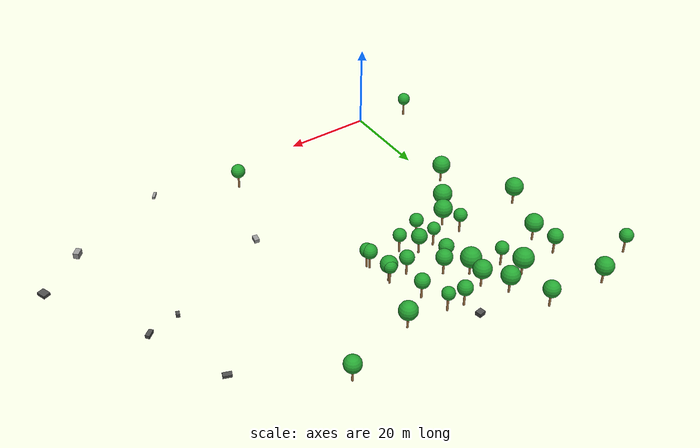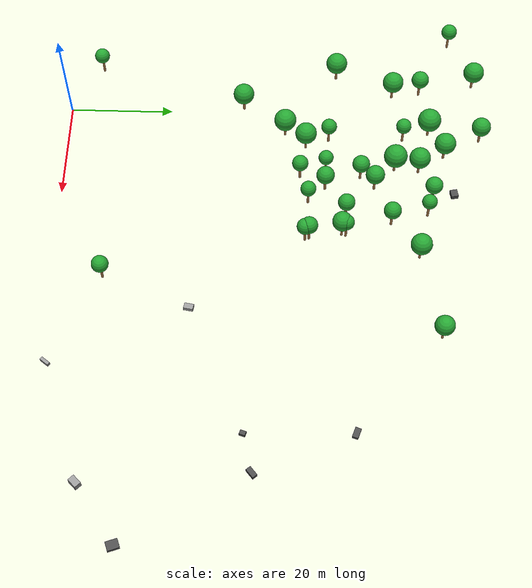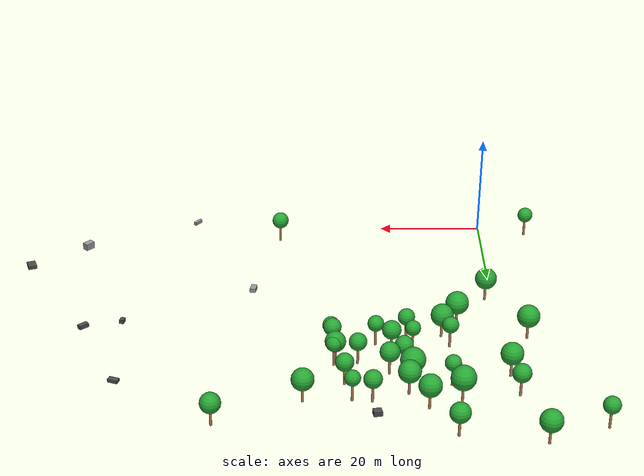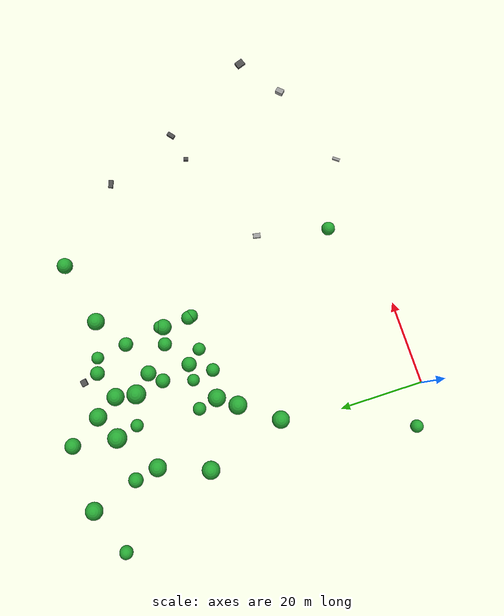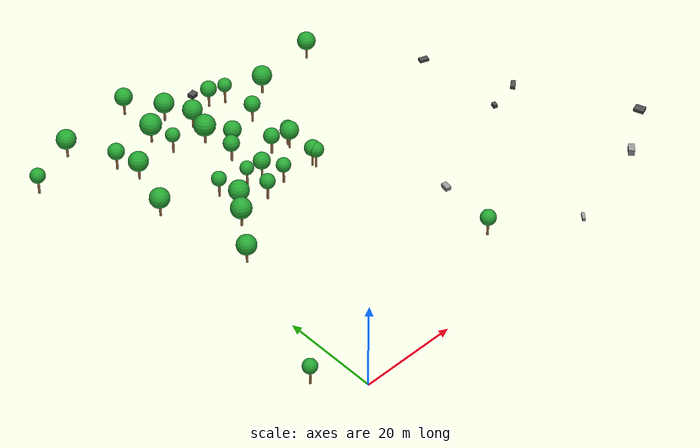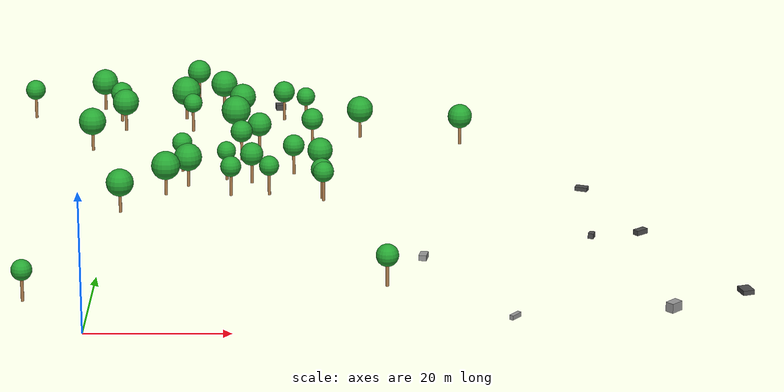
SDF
<sdf version="1.6">
 <world name="outdoor_v2">
  <include><uri>model://sun</uri></include>
  <model name="tree_52">
   <static>true</static>
   <pose>22.90 47.37 2.25 0 0 5.283</pose>
   <link name="link">
    <collision name="trunk_c">
     <pose>0 0 1.5 0 0 0</pose>
     <geometry><cylinder><radius>0.22</radius><length>3.0</length></cylinder></geometry>
    </collision>
    <visual name="trunk_v">
     <pose>0 0 1.5 0 0 0</pose>
     <geometry><cylinder><radius>0.22</radius><length>3.0</length></cylinder></geometry>
     <material>
      <script><uri>file://media/materials/scripts/gazebo.material</uri><name>Gazebo/Wood</name></script>
     </material>
    </visual>
    <collision name="canopy_c">
     <pose>0 0 4.5 0 0 0</pose>
     <geometry><sphere><radius>1.47</radius></sphere></geometry>
    </collision>
    <visual name="canopy_v">
     <pose>0 0 4.5 0 0 0</pose>
     <geometry><sphere><radius>1.47</radius></sphere></geometry>
     <material>
      <script><uri>file://media/materials/scripts/gazebo.material</uri><name>Gazebo/Green</name></script>
     </material>
    </visual>
   </link>
  </model>
  <model name="tree_53">
   <static>true</static>
   <pose>8.13 42.81 3.86 0 0 4.211</pose>
   <link name="link">
    <collision name="trunk_c">
     <pose>0 0 1.5 0 0 0</pose>
     <geometry><cylinder><radius>0.22</radius><length>3.0</length></cylinder></geometry>
    </collision>
    <visual name="trunk_v">
     <pose>0 0 1.5 0 0 0</pose>
     <geometry><cylinder><radius>0.22</radius><length>3.0</length></cylinder></geometry>
     <material>
      <script><uri>file://media/materials/scripts/gazebo.material</uri><name>Gazebo/Wood</name></script>
     </material>
    </visual>
    <collision name="canopy_c">
     <pose>0 0 4.5 0 0 0</pose>
     <geometry><sphere><radius>2.10</radius></sphere></geometry>
    </collision>
    <visual name="canopy_v">
     <pose>0 0 4.5 0 0 0</pose>
     <geometry><sphere><radius>2.10</radius></sphere></geometry>
     <material>
      <script><uri>file://media/materials/scripts/gazebo.material</uri><name>Gazebo/Green</name></script>
     </material>
    </visual>
   </link>
  </model>
  <model name="tree_54">
   <static>true</static>
   <pose>28.77 62.76 4.20 0 0 1.521</pose>
   <link name="link">
    <collision name="trunk_c">
     <pose>0 0 1.5 0 0 0</pose>
     <geometry><cylinder><radius>0.22</radius><length>3.0</length></cylinder></geometry>
    </collision>
    <visual name="trunk_v">
     <pose>0 0 1.5 0 0 0</pose>
     <geometry><cylinder><radius>0.22</radius><length>3.0</length></cylinder></geometry>
     <material>
      <script><uri>file://media/materials/scripts/gazebo.material</uri><name>Gazebo/Wood</name></script>
     </material>
    </visual>
    <collision name="canopy_c">
     <pose>0 0 4.5 0 0 0</pose>
     <geometry><sphere><radius>1.63</radius></sphere></geometry>
    </collision>
    <visual name="canopy_v">
     <pose>0 0 4.5 0 0 0</pose>
     <geometry><sphere><radius>1.63</radius></sphere></geometry>
     <material>
      <script><uri>file://media/materials/scripts/gazebo.material</uri><name>Gazebo/Green</name></script>
     </material>
    </visual>
   </link>
  </model>
  <model name="tree_55">
   <static>true</static>
   <pose>30.63 47.60 1.64 0 0 2.885</pose>
   <link name="link">
    <collision name="trunk_c">
     <pose>0 0 1.5 0 0 0</pose>
     <geometry><cylinder><radius>0.22</radius><length>3.0</length></cylinder></geometry>
    </collision>
    <visual name="trunk_v">
     <pose>0 0 1.5 0 0 0</pose>
     <geometry><cylinder><radius>0.22</radius><length>3.0</length></cylinder></geometry>
     <material>
      <script><uri>file://media/materials/scripts/gazebo.material</uri><name>Gazebo/Wood</name></script>
     </material>
    </visual>
    <collision name="canopy_c">
     <pose>0 0 4.5 0 0 0</pose>
     <geometry><sphere><radius>1.63</radius></sphere></geometry>
    </collision>
    <visual name="canopy_v">
     <pose>0 0 4.5 0 0 0</pose>
     <geometry><sphere><radius>1.63</radius></sphere></geometry>
     <material>
      <script><uri>file://media/materials/scripts/gazebo.material</uri><name>Gazebo/Green</name></script>
     </material>
    </visual>
   </link>
  </model>
  <model name="tree_56">
   <static>true</static>
   <pose>17.38 45.78 2.68 0 0 2.800</pose>
   <link name="link">
    <collision name="trunk_c">
     <pose>0 0 1.5 0 0 0</pose>
     <geometry><cylinder><radius>0.22</radius><length>3.0</length></cylinder></geometry>
    </collision>
    <visual name="trunk_v">
     <pose>0 0 1.5 0 0 0</pose>
     <geometry><cylinder><radius>0.22</radius><length>3.0</length></cylinder></geometry>
     <material>
      <script><uri>file://media/materials/scripts/gazebo.material</uri><name>Gazebo/Wood</name></script>
     </material>
    </visual>
    <collision name="canopy_c">
     <pose>0 0 4.5 0 0 0</pose>
     <geometry><sphere><radius>1.53</radius></sphere></geometry>
    </collision>
    <visual name="canopy_v">
     <pose>0 0 4.5 0 0 0</pose>
     <geometry><sphere><radius>1.53</radius></sphere></geometry>
     <material>
      <script><uri>file://media/materials/scripts/gazebo.material</uri><name>Gazebo/Green</name></script>
     </material>
    </visual>
   </link>
  </model>
  <model name="tree_57">
   <static>true</static>
   <pose>24.26 70.35 5.95 0 0 6.040</pose>
   <link name="link">
    <collision name="trunk_c">
     <pose>0 0 1.5 0 0 0</pose>
     <geometry><cylinder><radius>0.22</radius><length>3.0</length></cylinder></geometry>
    </collision>
    <visual name="trunk_v">
     <pose>0 0 1.5 0 0 0</pose>
     <geometry><cylinder><radius>0.22</radius><length>3.0</length></cylinder></geometry>
     <material>
      <script><uri>file://media/materials/scripts/gazebo.material</uri><name>Gazebo/Wood</name></script>
     </material>
    </visual>
    <collision name="canopy_c">
     <pose>0 0 4.5 0 0 0</pose>
     <geometry><sphere><radius>1.61</radius></sphere></geometry>
    </collision>
    <visual name="canopy_v">
     <pose>0 0 4.5 0 0 0</pose>
     <geometry><sphere><radius>1.61</radius></sphere></geometry>
     <material>
      <script><uri>file://media/materials/scripts/gazebo.material</uri><name>Gazebo/Green</name></script>
     </material>
    </visual>
   </link>
  </model>
  <model name="tree_58">
   <static>true</static>
   <pose>9.36 70.09 6.11 0 0 3.436</pose>
   <link name="link">
    <collision name="trunk_c">
     <pose>0 0 1.5 0 0 0</pose>
     <geometry><cylinder><radius>0.22</radius><length>3.0</length></cylinder></geometry>
    </collision>
    <visual name="trunk_v">
     <pose>0 0 1.5 0 0 0</pose>
     <geometry><cylinder><radius>0.22</radius><length>3.0</length></cylinder></geometry>
     <material>
      <script><uri>file://media/materials/scripts/gazebo.material</uri><name>Gazebo/Wood</name></script>
     </material>
    </visual>
    <collision name="canopy_c">
     <pose>0 0 4.5 0 0 0</pose>
     <geometry><sphere><radius>2.18</radius></sphere></geometry>
    </collision>
    <visual name="canopy_v">
     <pose>0 0 4.5 0 0 0</pose>
     <geometry><sphere><radius>2.18</radius></sphere></geometry>
     <material>
      <script><uri>file://media/materials/scripts/gazebo.material</uri><name>Gazebo/Green</name></script>
     </material>
    </visual>
   </link>
  </model>
  <model name="tree_59">
   <static>true</static>
   <pose>26.26 54.44 2.93 0 0 6.064</pose>
   <link name="link">
    <collision name="trunk_c">
     <pose>0 0 1.5 0 0 0</pose>
     <geometry><cylinder><radius>0.22</radius><length>3.0</length></cylinder></geometry>
    </collision>
    <visual name="trunk_v">
     <pose>0 0 1.5 0 0 0</pose>
     <geometry><cylinder><radius>0.22</radius><length>3.0</length></cylinder></geometry>
     <material>
      <script><uri>file://media/materials/scripts/gazebo.material</uri><name>Gazebo/Wood</name></script>
     </material>
    </visual>
    <collision name="canopy_c">
     <pose>0 0 4.5 0 0 0</pose>
     <geometry><sphere><radius>1.60</radius></sphere></geometry>
    </collision>
    <visual name="canopy_v">
     <pose>0 0 4.5 0 0 0</pose>
     <geometry><sphere><radius>1.60</radius></sphere></geometry>
     <material>
      <script><uri>file://media/materials/scripts/gazebo.material</uri><name>Gazebo/Green</name></script>
     </material>
    </visual>
   </link>
  </model>
  <model name="tree_60">
   <static>true</static>
   <pose>-0.38 68.70 6.20 0 0 2.239</pose>
   <link name="link">
    <collision name="trunk_c">
     <pose>0 0 1.5 0 0 0</pose>
     <geometry><cylinder><radius>0.22</radius><length>3.0</length></cylinder></geometry>
    </collision>
    <visual name="trunk_v">
     <pose>0 0 1.5 0 0 0</pose>
     <geometry><cylinder><radius>0.22</radius><length>3.0</length></cylinder></geometry>
     <material>
      <script><uri>file://media/materials/scripts/gazebo.material</uri><name>Gazebo/Wood</name></script>
     </material>
    </visual>
    <collision name="canopy_c">
     <pose>0 0 4.5 0 0 0</pose>
     <geometry><sphere><radius>1.65</radius></sphere></geometry>
    </collision>
    <visual name="canopy_v">
     <pose>0 0 4.5 0 0 0</pose>
     <geometry><sphere><radius>1.65</radius></sphere></geometry>
     <material>
      <script><uri>file://media/materials/scripts/gazebo.material</uri><name>Gazebo/Green</name></script>
     </material>
    </visual>
   </link>
  </model>
  <model name="tree_61">
   <static>true</static>
   <pose>16.50 50.62 3.38 0 0 2.397</pose>
   <link name="link">
    <collision name="trunk_c">
     <pose>0 0 1.5 0 0 0</pose>
     <geometry><cylinder><radius>0.22</radius><length>3.0</length></cylinder></geometry>
    </collision>
    <visual name="trunk_v">
     <pose>0 0 1.5 0 0 0</pose>
     <geometry><cylinder><radius>0.22</radius><length>3.0</length></cylinder></geometry>
     <material>
      <script><uri>file://media/materials/scripts/gazebo.material</uri><name>Gazebo/Wood</name></script>
     </material>
    </visual>
    <collision name="canopy_c">
     <pose>0 0 4.5 0 0 0</pose>
     <geometry><sphere><radius>1.40</radius></sphere></geometry>
    </collision>
    <visual name="canopy_v">
     <pose>0 0 4.5 0 0 0</pose>
     <geometry><sphere><radius>1.40</radius></sphere></geometry>
     <material>
      <script><uri>file://media/materials/scripts/gazebo.material</uri><name>Gazebo/Green</name></script>
     </material>
    </visual>
   </link>
  </model>
  <model name="tree_62">
   <static>true</static>
   <pose>20.97 59.73 4.36 0 0 3.157</pose>
   <link name="link">
    <collision name="trunk_c">
     <pose>0 0 1.5 0 0 0</pose>
     <geometry><cylinder><radius>0.22</radius><length>3.0</length></cylinder></geometry>
    </collision>
    <visual name="trunk_v">
     <pose>0 0 1.5 0 0 0</pose>
     <geometry><cylinder><radius>0.22</radius><length>3.0</length></cylinder></geometry>
     <material>
      <script><uri>file://media/materials/scripts/gazebo.material</uri><name>Gazebo/Wood</name></script>
     </material>
    </visual>
    <collision name="canopy_c">
     <pose>0 0 4.5 0 0 0</pose>
     <geometry><sphere><radius>1.78</radius></sphere></geometry>
    </collision>
    <visual name="canopy_v">
     <pose>0 0 4.5 0 0 0</pose>
     <geometry><sphere><radius>1.78</radius></sphere></geometry>
     <material>
      <script><uri>file://media/materials/scripts/gazebo.material</uri><name>Gazebo/Green</name></script>
     </material>
    </visual>
   </link>
  </model>
  <model name="tree_63">
   <static>true</static>
   <pose>30.85 46.86 1.55 0 0 3.170</pose>
   <link name="link">
    <collision name="trunk_c">
     <pose>0 0 1.5 0 0 0</pose>
     <geometry><cylinder><radius>0.22</radius><length>3.0</length></cylinder></geometry>
    </collision>
    <visual name="trunk_v">
     <pose>0 0 1.5 0 0 0</pose>
     <geometry><cylinder><radius>0.22</radius><length>3.0</length></cylinder></geometry>
     <material>
      <script><uri>file://media/materials/scripts/gazebo.material</uri><name>Gazebo/Wood</name></script>
     </material>
    </visual>
    <collision name="canopy_c">
     <pose>0 0 4.5 0 0 0</pose>
     <geometry><sphere><radius>1.56</radius></sphere></geometry>
    </collision>
    <visual name="canopy_v">
     <pose>0 0 4.5 0 0 0</pose>
     <geometry><sphere><radius>1.56</radius></sphere></geometry>
     <material>
      <script><uri>file://media/materials/scripts/gazebo.material</uri><name>Gazebo/Green</name></script>
     </material>
    </visual>
   </link>
  </model>
  <model name="tree_64">
   <static>true</static>
   <pose>27.60 69.43 5.51 0 0 1.659</pose>
   <link name="link">
    <collision name="trunk_c">
     <pose>0 0 1.5 0 0 0</pose>
     <geometry><cylinder><radius>0.22</radius><length>3.0</length></cylinder></geometry>
    </collision>
    <visual name="trunk_v">
     <pose>0 0 1.5 0 0 0</pose>
     <geometry><cylinder><radius>0.22</radius><length>3.0</length></cylinder></geometry>
     <material>
      <script><uri>file://media/materials/scripts/gazebo.material</uri><name>Gazebo/Wood</name></script>
     </material>
    </visual>
    <collision name="canopy_c">
     <pose>0 0 4.5 0 0 0</pose>
     <geometry><sphere><radius>1.40</radius></sphere></geometry>
    </collision>
    <visual name="canopy_v">
     <pose>0 0 4.5 0 0 0</pose>
     <geometry><sphere><radius>1.40</radius></sphere></geometry>
     <material>
      <script><uri>file://media/materials/scripts/gazebo.material</uri><name>Gazebo/Green</name></script>
     </material>
    </visual>
   </link>
  </model>
  <model name="tree_65">
   <static>true</static>
   <pose>30.44 54.42 2.54 0 0 2.509</pose>
   <link name="link">
    <collision name="trunk_c">
     <pose>0 0 1.5 0 0 0</pose>
     <geometry><cylinder><radius>0.22</radius><length>3.0</length></cylinder></geometry>
    </collision>
    <visual name="trunk_v">
     <pose>0 0 1.5 0 0 0</pose>
     <geometry><cylinder><radius>0.22</radius><length>3.0</length></cylinder></geometry>
     <material>
      <script><uri>file://media/materials/scripts/gazebo.material</uri><name>Gazebo/Wood</name></script>
     </material>
    </visual>
    <collision name="canopy_c">
     <pose>0 0 4.5 0 0 0</pose>
     <geometry><sphere><radius>1.47</radius></sphere></geometry>
    </collision>
    <visual name="canopy_v">
     <pose>0 0 4.5 0 0 0</pose>
     <geometry><sphere><radius>1.47</radius></sphere></geometry>
     <material>
      <script><uri>file://media/materials/scripts/gazebo.material</uri><name>Gazebo/Green</name></script>
     </material>
    </visual>
   </link>
  </model>
  <model name="tree_66">
   <static>true</static>
   <pose>10.67 65.21 5.83 0 0 0.141</pose>
   <link name="link">
    <collision name="trunk_c">
     <pose>0 0 1.5 0 0 0</pose>
     <geometry><cylinder><radius>0.22</radius><length>3.0</length></cylinder></geometry>
    </collision>
    <visual name="trunk_v">
     <pose>0 0 1.5 0 0 0</pose>
     <geometry><cylinder><radius>0.22</radius><length>3.0</length></cylinder></geometry>
     <material>
      <script><uri>file://media/materials/scripts/gazebo.material</uri><name>Gazebo/Wood</name></script>
     </material>
    </visual>
    <collision name="canopy_c">
     <pose>0 0 4.5 0 0 0</pose>
     <geometry><sphere><radius>1.43</radius></sphere></geometry>
    </collision>
    <visual name="canopy_v">
     <pose>0 0 4.5 0 0 0</pose>
     <geometry><sphere><radius>1.43</radius></sphere></geometry>
     <material>
      <script><uri>file://media/materials/scripts/gazebo.material</uri><name>Gazebo/Green</name></script>
     </material>
    </visual>
   </link>
  </model>
  <model name="tree_67">
   <static>true</static>
   <pose>18.41 57.16 4.15 0 0 1.462</pose>
   <link name="link">
    <collision name="trunk_c">
     <pose>0 0 1.5 0 0 0</pose>
     <geometry><cylinder><radius>0.22</radius><length>3.0</length></cylinder></geometry>
    </collision>
    <visual name="trunk_v">
     <pose>0 0 1.5 0 0 0</pose>
     <geometry><cylinder><radius>0.22</radius><length>3.0</length></cylinder></geometry>
     <material>
      <script><uri>file://media/materials/scripts/gazebo.material</uri><name>Gazebo/Wood</name></script>
     </material>
    </visual>
    <collision name="canopy_c">
     <pose>0 0 4.5 0 0 0</pose>
     <geometry><sphere><radius>1.64</radius></sphere></geometry>
    </collision>
    <visual name="canopy_v">
     <pose>0 0 4.5 0 0 0</pose>
     <geometry><sphere><radius>1.64</radius></sphere></geometry>
     <material>
      <script><uri>file://media/materials/scripts/gazebo.material</uri><name>Gazebo/Green</name></script>
     </material>
    </visual>
   </link>
  </model>
  <model name="tree_68">
   <static>true</static>
   <pose>30.19 53.67 2.45 0 0 3.323</pose>
   <link name="link">
    <collision name="trunk_c">
     <pose>0 0 1.5 0 0 0</pose>
     <geometry><cylinder><radius>0.22</radius><length>3.0</length></cylinder></geometry>
    </collision>
    <visual name="trunk_v">
     <pose>0 0 1.5 0 0 0</pose>
     <geometry><cylinder><radius>0.22</radius><length>3.0</length></cylinder></geometry>
     <material>
      <script><uri>file://media/materials/scripts/gazebo.material</uri><name>Gazebo/Wood</name></script>
     </material>
    </visual>
    <collision name="canopy_c">
     <pose>0 0 4.5 0 0 0</pose>
     <geometry><sphere><radius>1.87</radius></sphere></geometry>
    </collision>
    <visual name="canopy_v">
     <pose>0 0 4.5 0 0 0</pose>
     <geometry><sphere><radius>1.87</radius></sphere></geometry>
     <material>
      <script><uri>file://media/materials/scripts/gazebo.material</uri><name>Gazebo/Green</name></script>
     </material>
    </visual>
   </link>
  </model>
  <model name="tree_69">
   <static>true</static>
   <pose>-3.30 52.56 7.19 0 0 4.129</pose>
   <link name="link">
    <collision name="trunk_c">
     <pose>0 0 1.5 0 0 0</pose>
     <geometry><cylinder><radius>0.22</radius><length>3.0</length></cylinder></geometry>
    </collision>
    <visual name="trunk_v">
     <pose>0 0 1.5 0 0 0</pose>
     <geometry><cylinder><radius>0.22</radius><length>3.0</length></cylinder></geometry>
     <material>
      <script><uri>file://media/materials/scripts/gazebo.material</uri><name>Gazebo/Wood</name></script>
     </material>
    </visual>
    <collision name="canopy_c">
     <pose>0 0 4.5 0 0 0</pose>
     <geometry><sphere><radius>2.00</radius></sphere></geometry>
    </collision>
    <visual name="canopy_v">
     <pose>0 0 4.5 0 0 0</pose>
     <geometry><sphere><radius>2.00</radius></sphere></geometry>
     <material>
      <script><uri>file://media/materials/scripts/gazebo.material</uri><name>Gazebo/Green</name></script>
     </material>
    </visual>
   </link>
  </model>
  <model name="tree_70">
   <static>true</static>
   <pose>0.68 63.41 6.54 0 0 5.521</pose>
   <link name="link">
    <collision name="trunk_c">
     <pose>0 0 1.5 0 0 0</pose>
     <geometry><cylinder><radius>0.22</radius><length>3.0</length></cylinder></geometry>
    </collision>
    <visual name="trunk_v">
     <pose>0 0 1.5 0 0 0</pose>
     <geometry><cylinder><radius>0.22</radius><length>3.0</length></cylinder></geometry>
     <material>
      <script><uri>file://media/materials/scripts/gazebo.material</uri><name>Gazebo/Wood</name></script>
     </material>
    </visual>
    <collision name="canopy_c">
     <pose>0 0 4.5 0 0 0</pose>
     <geometry><sphere><radius>1.97</radius></sphere></geometry>
    </collision>
    <visual name="canopy_v">
     <pose>0 0 4.5 0 0 0</pose>
     <geometry><sphere><radius>1.97</radius></sphere></geometry>
     <material>
      <script><uri>file://media/materials/scripts/gazebo.material</uri><name>Gazebo/Green</name></script>
     </material>
    </visual>
   </link>
  </model>
  <model name="tree_71">
   <static>true</static>
   <pose>20.22 50.54 2.93 0 0 2.048</pose>
   <link name="link">
    <collision name="trunk_c">
     <pose>0 0 1.5 0 0 0</pose>
     <geometry><cylinder><radius>0.22</radius><length>3.0</length></cylinder></geometry>
    </collision>
    <visual name="trunk_v">
     <pose>0 0 1.5 0 0 0</pose>
     <geometry><cylinder><radius>0.22</radius><length>3.0</length></cylinder></geometry>
     <material>
      <script><uri>file://media/materials/scripts/gazebo.material</uri><name>Gazebo/Wood</name></script>
     </material>
    </visual>
    <collision name="canopy_c">
     <pose>0 0 4.5 0 0 0</pose>
     <geometry><sphere><radius>1.71</radius></sphere></geometry>
    </collision>
    <visual name="canopy_v">
     <pose>0 0 4.5 0 0 0</pose>
     <geometry><sphere><radius>1.71</radius></sphere></geometry>
     <material>
      <script><uri>file://media/materials/scripts/gazebo.material</uri><name>Gazebo/Green</name></script>
     </material>
    </visual>
   </link>
  </model>
  <model name="tree_72">
   <static>true</static>
   <pose>17.28 63.54 5.29 0 0 0.939</pose>
   <link name="link">
    <collision name="trunk_c">
     <pose>0 0 1.5 0 0 0</pose>
     <geometry><cylinder><radius>0.22</radius><length>3.0</length></cylinder></geometry>
    </collision>
    <visual name="trunk_v">
     <pose>0 0 1.5 0 0 0</pose>
     <geometry><cylinder><radius>0.22</radius><length>3.0</length></cylinder></geometry>
     <material>
      <script><uri>file://media/materials/scripts/gazebo.material</uri><name>Gazebo/Wood</name></script>
     </material>
    </visual>
    <collision name="canopy_c">
     <pose>0 0 4.5 0 0 0</pose>
     <geometry><sphere><radius>2.19</radius></sphere></geometry>
    </collision>
    <visual name="canopy_v">
     <pose>0 0 4.5 0 0 0</pose>
     <geometry><sphere><radius>2.19</radius></sphere></geometry>
     <material>
      <script><uri>file://media/materials/scripts/gazebo.material</uri><name>Gazebo/Green</name></script>
     </material>
    </visual>
   </link>
  </model>
  <model name="tree_73">
   <static>true</static>
   <pose>18.08 67.98 5.91 0 0 4.039</pose>
   <link name="link">
    <collision name="trunk_c">
     <pose>0 0 1.5 0 0 0</pose>
     <geometry><cylinder><radius>0.22</radius><length>3.0</length></cylinder></geometry>
    </collision>
    <visual name="trunk_v">
     <pose>0 0 1.5 0 0 0</pose>
     <geometry><cylinder><radius>0.22</radius><length>3.0</length></cylinder></geometry>
     <material>
      <script><uri>file://media/materials/scripts/gazebo.material</uri><name>Gazebo/Wood</name></script>
     </material>
    </visual>
    <collision name="canopy_c">
     <pose>0 0 4.5 0 0 0</pose>
     <geometry><sphere><radius>1.98</radius></sphere></geometry>
    </collision>
    <visual name="canopy_v">
     <pose>0 0 4.5 0 0 0</pose>
     <geometry><sphere><radius>1.98</radius></sphere></geometry>
     <material>
      <script><uri>file://media/materials/scripts/gazebo.material</uri><name>Gazebo/Green</name></script>
     </material>
    </visual>
   </link>
  </model>
  <model name="tree_76">
   <static>true</static>
   <pose>15.00 72.77 6.39 0 0 5.101</pose>
   <link name="link">
    <collision name="trunk_c">
     <pose>0 0 1.5 0 0 0</pose>
     <geometry><cylinder><radius>0.22</radius><length>3.0</length></cylinder></geometry>
    </collision>
    <visual name="trunk_v">
     <pose>0 0 1.5 0 0 0</pose>
     <geometry><cylinder><radius>0.22</radius><length>3.0</length></cylinder></geometry>
     <material>
      <script><uri>file://media/materials/scripts/gazebo.material</uri><name>Gazebo/Wood</name></script>
     </material>
    </visual>
    <collision name="canopy_c">
     <pose>0 0 4.5 0 0 0</pose>
     <geometry><sphere><radius>1.99</radius></sphere></geometry>
    </collision>
    <visual name="canopy_v">
     <pose>0 0 4.5 0 0 0</pose>
     <geometry><sphere><radius>1.99</radius></sphere></geometry>
     <material>
      <script><uri>file://media/materials/scripts/gazebo.material</uri><name>Gazebo/Green</name></script>
     </material>
    </visual>
   </link>
  </model>
  <model name="tree_77">
   <static>true</static>
   <pose>-14.29 75.19 4.47 0 0 3.289</pose>
   <link name="link">
    <collision name="trunk_c">
     <pose>0 0 1.5 0 0 0</pose>
     <geometry><cylinder><radius>0.22</radius><length>3.0</length></cylinder></geometry>
    </collision>
    <visual name="trunk_v">
     <pose>0 0 1.5 0 0 0</pose>
     <geometry><cylinder><radius>0.22</radius><length>3.0</length></cylinder></geometry>
     <material>
      <script><uri>file://media/materials/scripts/gazebo.material</uri><name>Gazebo/Wood</name></script>
     </material>
    </visual>
    <collision name="canopy_c">
     <pose>0 0 4.5 0 0 0</pose>
     <geometry><sphere><radius>1.51</radius></sphere></geometry>
    </collision>
    <visual name="canopy_v">
     <pose>0 0 4.5 0 0 0</pose>
     <geometry><sphere><radius>1.51</radius></sphere></geometry>
     <material>
      <script><uri>file://media/materials/scripts/gazebo.material</uri><name>Gazebo/Green</name></script>
     </material>
    </visual>
   </link>
  </model>
  <model name="tree_82">
   <static>true</static>
   <pose>40.53 10.17 2.89 0 0 0.196</pose>
   <link name="link">
    <collision name="trunk_c">
     <pose>0 0 1.5 0 0 0</pose>
     <geometry><cylinder><radius>0.22</radius><length>3.0</length></cylinder></geometry>
    </collision>
    <visual name="trunk_v">
     <pose>0 0 1.5 0 0 0</pose>
     <geometry><cylinder><radius>0.22</radius><length>3.0</length></cylinder></geometry>
     <material>
      <script><uri>file://media/materials/scripts/gazebo.material</uri><name>Gazebo/Wood</name></script>
     </material>
    </visual>
    <collision name="canopy_c">
     <pose>0 0 4.5 0 0 0</pose>
     <geometry><sphere><radius>1.58</radius></sphere></geometry>
    </collision>
    <visual name="canopy_v">
     <pose>0 0 4.5 0 0 0</pose>
     <geometry><sphere><radius>1.58</radius></sphere></geometry>
     <material>
      <script><uri>file://media/materials/scripts/gazebo.material</uri><name>Gazebo/Green</name></script>
     </material>
    </visual>
   </link>
  </model>
  <model name="tree_84">
   <static>true</static>
   <pose>9.98 51.17 4.44 0 0 5.249</pose>
   <link name="link">
    <collision name="trunk_c">
     <pose>0 0 1.5 0 0 0</pose>
     <geometry><cylinder><radius>0.22</radius><length>3.0</length></cylinder></geometry>
    </collision>
    <visual name="trunk_v">
     <pose>0 0 1.5 0 0 0</pose>
     <geometry><cylinder><radius>0.22</radius><length>3.0</length></cylinder></geometry>
     <material>
      <script><uri>file://media/materials/scripts/gazebo.material</uri><name>Gazebo/Wood</name></script>
     </material>
    </visual>
    <collision name="canopy_c">
     <pose>0 0 4.5 0 0 0</pose>
     <geometry><sphere><radius>1.48</radius></sphere></geometry>
    </collision>
    <visual name="canopy_v">
     <pose>0 0 4.5 0 0 0</pose>
     <geometry><sphere><radius>1.48</radius></sphere></geometry>
     <material>
      <script><uri>file://media/materials/scripts/gazebo.material</uri><name>Gazebo/Green</name></script>
     </material>
    </visual>
   </link>
  </model>
  <model name="tree_88">
   <static>true</static>
   <pose>11.11 46.80 3.74 0 0 4.699</pose>
   <link name="link">
    <collision name="trunk_c">
     <pose>0 0 1.5 0 0 0</pose>
     <geometry><cylinder><radius>0.22</radius><length>3.0</length></cylinder></geometry>
    </collision>
    <visual name="trunk_v">
     <pose>0 0 1.5 0 0 0</pose>
     <geometry><cylinder><radius>0.22</radius><length>3.0</length></cylinder></geometry>
     <material>
      <script><uri>file://media/materials/scripts/gazebo.material</uri><name>Gazebo/Wood</name></script>
     </material>
    </visual>
    <collision name="canopy_c">
     <pose>0 0 4.5 0 0 0</pose>
     <geometry><sphere><radius>2.04</radius></sphere></geometry>
    </collision>
    <visual name="canopy_v">
     <pose>0 0 4.5 0 0 0</pose>
     <geometry><sphere><radius>2.04</radius></sphere></geometry>
     <material>
      <script><uri>file://media/materials/scripts/gazebo.material</uri><name>Gazebo/Green</name></script>
     </material>
    </visual>
   </link>
  </model>
  <model name="tree_91">
   <static>true</static>
   <pose>2.19 34.69 4.17 0 0 1.584</pose>
   <link name="link">
    <collision name="trunk_c">
     <pose>0 0 1.5 0 0 0</pose>
     <geometry><cylinder><radius>0.22</radius><length>3.0</length></cylinder></geometry>
    </collision>
    <visual name="trunk_v">
     <pose>0 0 1.5 0 0 0</pose>
     <geometry><cylinder><radius>0.22</radius><length>3.0</length></cylinder></geometry>
     <material>
      <script><uri>file://media/materials/scripts/gazebo.material</uri><name>Gazebo/Wood</name></script>
     </material>
    </visual>
    <collision name="canopy_c">
     <pose>0 0 4.5 0 0 0</pose>
     <geometry><sphere><radius>1.99</radius></sphere></geometry>
    </collision>
    <visual name="canopy_v">
     <pose>0 0 4.5 0 0 0</pose>
     <geometry><sphere><radius>1.99</radius></sphere></geometry>
     <material>
      <script><uri>file://media/materials/scripts/gazebo.material</uri><name>Gazebo/Green</name></script>
     </material>
    </visual>
   </link>
  </model>
  <model name="tree_92">
   <static>true</static>
   <pose>-8.58 5.99 2.15 0 0 1.668</pose>
   <link name="link">
    <collision name="trunk_c">
     <pose>0 0 1.5 0 0 0</pose>
     <geometry><cylinder><radius>0.22</radius><length>3.0</length></cylinder></geometry>
    </collision>
    <visual name="trunk_v">
     <pose>0 0 1.5 0 0 0</pose>
     <geometry><cylinder><radius>0.22</radius><length>3.0</length></cylinder></geometry>
     <material>
      <script><uri>file://media/materials/scripts/gazebo.material</uri><name>Gazebo/Wood</name></script>
     </material>
    </visual>
    <collision name="canopy_c">
     <pose>0 0 4.5 0 0 0</pose>
     <geometry><sphere><radius>1.46</radius></sphere></geometry>
    </collision>
    <visual name="canopy_v">
     <pose>0 0 4.5 0 0 0</pose>
     <geometry><sphere><radius>1.46</radius></sphere></geometry>
     <material>
      <script><uri>file://media/materials/scripts/gazebo.material</uri><name>Gazebo/Green</name></script>
     </material>
    </visual>
   </link>
  </model>
  <model name="tree_93">
   <static>true</static>
   <pose>-3.95 79.47 4.38 0 0 1.289</pose>
   <link name="link">
    <collision name="trunk_c">
     <pose>0 0 1.5 0 0 0</pose>
     <geometry><cylinder><radius>0.22</radius><length>3.0</length></cylinder></geometry>
    </collision>
    <visual name="trunk_v">
     <pose>0 0 1.5 0 0 0</pose>
     <geometry><cylinder><radius>0.22</radius><length>3.0</length></cylinder></geometry>
     <material>
      <script><uri>file://media/materials/scripts/gazebo.material</uri><name>Gazebo/Wood</name></script>
     </material>
    </visual>
    <collision name="canopy_c">
     <pose>0 0 4.5 0 0 0</pose>
     <geometry><sphere><radius>1.98</radius></sphere></geometry>
    </collision>
    <visual name="canopy_v">
     <pose>0 0 4.5 0 0 0</pose>
     <geometry><sphere><radius>1.98</radius></sphere></geometry>
     <material>
      <script><uri>file://media/materials/scripts/gazebo.material</uri><name>Gazebo/Green</name></script>
     </material>
    </visual>
   </link>
  </model>
  <model name="tree_94">
   <static>true</static>
   <pose>35.86 67.78 4.06 0 0 6.128</pose>
   <link name="link">
    <collision name="trunk_c">
     <pose>0 0 1.5 0 0 0</pose>
     <geometry><cylinder><radius>0.22</radius><length>3.0</length></cylinder></geometry>
    </collision>
    <visual name="trunk_v">
     <pose>0 0 1.5 0 0 0</pose>
     <geometry><cylinder><radius>0.22</radius><length>3.0</length></cylinder></geometry>
     <material>
      <script><uri>file://media/materials/scripts/gazebo.material</uri><name>Gazebo/Wood</name></script>
     </material>
    </visual>
    <collision name="canopy_c">
     <pose>0 0 4.5 0 0 0</pose>
     <geometry><sphere><radius>1.99</radius></sphere></geometry>
    </collision>
    <visual name="canopy_v">
     <pose>0 0 4.5 0 0 0</pose>
     <geometry><sphere><radius>1.99</radius></sphere></geometry>
     <material>
      <script><uri>file://media/materials/scripts/gazebo.material</uri><name>Gazebo/Green</name></script>
     </material>
    </visual>
   </link>
  </model>
  <model name="tree_96">
   <static>true</static>
   <pose>10.71 79.79 6.05 0 0 4.294</pose>
   <link name="link">
    <collision name="trunk_c">
     <pose>0 0 1.5 0 0 0</pose>
     <geometry><cylinder><radius>0.22</radius><length>3.0</length></cylinder></geometry>
    </collision>
    <visual name="trunk_v">
     <pose>0 0 1.5 0 0 0</pose>
     <geometry><cylinder><radius>0.22</radius><length>3.0</length></cylinder></geometry>
     <material>
      <script><uri>file://media/materials/scripts/gazebo.material</uri><name>Gazebo/Wood</name></script>
     </material>
    </visual>
    <collision name="canopy_c">
     <pose>0 0 4.5 0 0 0</pose>
     <geometry><sphere><radius>1.78</radius></sphere></geometry>
    </collision>
    <visual name="canopy_v">
     <pose>0 0 4.5 0 0 0</pose>
     <geometry><sphere><radius>1.78</radius></sphere></geometry>
     <material>
      <script><uri>file://media/materials/scripts/gazebo.material</uri><name>Gazebo/Green</name></script>
     </material>
    </visual>
   </link>
  </model>
  <model name="tree_101">
   <static>true</static>
   <pose>51.11 71.46 1.77 0 0 0.078</pose>
   <link name="link">
    <collision name="trunk_c">
     <pose>0 0 1.5 0 0 0</pose>
     <geometry><cylinder><radius>0.22</radius><length>3.0</length></cylinder></geometry>
    </collision>
    <visual name="trunk_v">
     <pose>0 0 1.5 0 0 0</pose>
     <geometry><cylinder><radius>0.22</radius><length>3.0</length></cylinder></geometry>
     <material>
      <script><uri>file://media/materials/scripts/gazebo.material</uri><name>Gazebo/Wood</name></script>
     </material>
    </visual>
    <collision name="canopy_c">
     <pose>0 0 4.5 0 0 0</pose>
     <geometry><sphere><radius>1.85</radius></sphere></geometry>
    </collision>
    <visual name="canopy_v">
     <pose>0 0 4.5 0 0 0</pose>
     <geometry><sphere><radius>1.85</radius></sphere></geometry>
     <material>
      <script><uri>file://media/materials/scripts/gazebo.material</uri><name>Gazebo/Green</name></script>
     </material>
    </visual>
   </link>
  </model>
  <model name="rock_12">
   <static>true</static>
   <pose>57.64 1.57 2.22 0 0 4.054</pose>
   <link name="link">
    <collision name="rock_c"><geometry><box><size>1.84 0.60 0.64</size></box></geometry></collision>
    <visual name="rock_v">
     <geometry><box><size>1.84 0.60 0.64</size></box></geometry>
     <material>
      <script><uri>file://media/materials/scripts/gazebo.material</uri><name>Gazebo/Grey</name></script>
     </material>
    </visual>
   </link>
  </model>
  <model name="rock_13">
   <static>true</static>
   <pose>69.64 36.60 0.28 0 0 4.387</pose>
   <link name="link">
    <collision name="rock_c"><geometry><box><size>1.09 0.80 0.78</size></box></geometry></collision>
    <visual name="rock_v">
     <geometry><box><size>1.09 0.80 0.78</size></box></geometry>
     <material>
      <script><uri>file://media/materials/scripts/gazebo.material</uri><name>Gazebo/DarkGrey</name></script>
     </material>
    </visual>
   </link>
  </model>
  <model name="rock_22">
   <static>true</static>
   <pose>76.75 38.34 0.21 0 0 0.685</pose>
   <link name="link">
    <collision name="rock_c"><geometry><box><size>1.91 0.97 0.74</size></box></geometry></collision>
    <visual name="rock_v">
     <geometry><box><size>1.91 0.97 0.74</size></box></geometry>
     <material>
      <script><uri>file://media/materials/scripts/gazebo.material</uri><name>Gazebo/DarkGrey</name></script>
     </material>
    </visual>
   </link>
  </model>
  <model name="rock_24">
   <static>true</static>
   <pose>89.78 16.05 0.18 0 0 0.341</pose>
   <link name="link">
    <collision name="rock_c"><geometry><box><size>1.66 2.12 0.66</size></box></geometry></collision>
    <visual name="rock_v">
     <geometry><box><size>1.66 2.12 0.66</size></box></geometry>
     <material>
      <script><uri>file://media/materials/scripts/gazebo.material</uri><name>Gazebo/DarkGrey</name></script>
     </material>
    </visual>
   </link>
  </model>
  <model name="rock_31">
   <static>true</static>
   <pose>69.17 56.15 0.22 0 0 1.229</pose>
   <link name="link">
    <collision name="rock_c"><geometry><box><size>1.09 1.89 0.60</size></box></geometry></collision>
    <visual name="rock_v">
     <geometry><box><size>1.09 1.89 0.60</size></box></geometry>
     <material>
      <script><uri>file://media/materials/scripts/gazebo.material</uri><name>Gazebo/DarkGrey</name></script>
     </material>
    </visual>
   </link>
  </model>
  <model name="rock_32">
   <static>true</static>
   <pose>23.56 74.42 6.70 0 0 0.190</pose>
   <link name="link">
    <collision name="rock_c"><geometry><box><size>1.47 1.31 0.86</size></box></geometry></collision>
    <visual name="rock_v">
     <geometry><box><size>1.47 1.31 0.86</size></box></geometry>
     <material>
      <script><uri>file://media/materials/scripts/gazebo.material</uri><name>Gazebo/DarkGrey</name></script>
     </material>
    </visual>
   </link>
  </model>
  <model name="rock_33">
   <static>true</static>
   <pose>79.33 8.86 0.74 0 0 2.359</pose>
   <link name="link">
    <collision name="rock_c"><geometry><box><size>1.26 1.90 1.34</size></box></geometry></collision>
    <visual name="rock_v">
     <geometry><box><size>1.26 1.90 1.34</size></box></geometry>
     <material>
      <script><uri>file://media/materials/scripts/gazebo.material</uri><name>Gazebo/Grey</name></script>
     </material>
    </visual>
   </link>
  </model>
  <model name="rock_36">
   <static>true</static>
   <pose>45.48 26.01 1.07 0 0 4.531</pose>
   <link name="link">
    <collision name="rock_c"><geometry><box><size>1.75 1.11 0.80</size></box></geometry></collision>
    <visual name="rock_v">
     <geometry><box><size>1.75 1.11 0.80</size></box></geometry>
     <material>
      <script><uri>file://media/materials/scripts/gazebo.material</uri><name>Gazebo/Grey</name></script>
     </material>
    </visual>
   </link>
  </model>
 </world>
</sdf>
